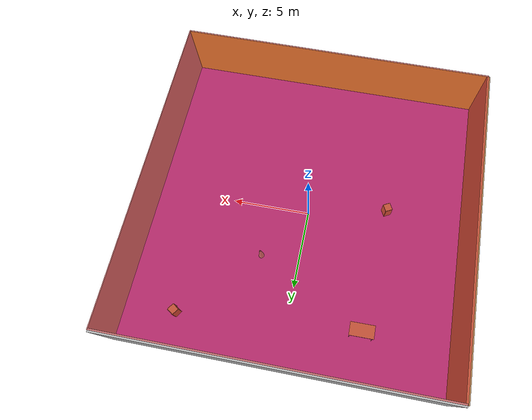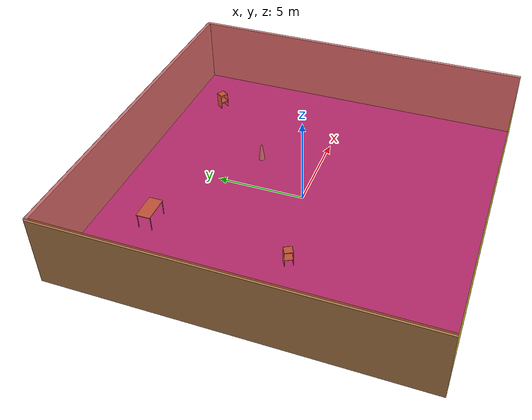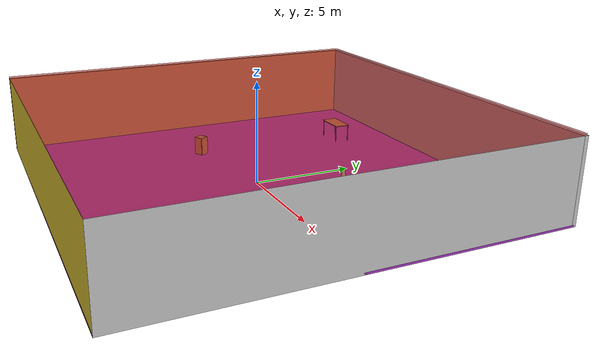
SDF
<sdf version="1.4">
 <world name="default">
  <physics type="ode">
   <max_step_size>0.001</max_step_size>
   <real_time_factor>1</real_time_factor>
   <real_time_update_rate>1000</real_time_update_rate>
   <gravity>0 0 -9.8</gravity>
  </physics>
  <scene><ambient>0.4 0.4 0.4 1</ambient><background>0.7 0.7 0.7 1</background><shadows>1</shadows></scene>
  <model name="Surrounding">
   <static>1</static>
   <link name="Ceiling">
    <collision name="Ceiling_Collision"><geometry><box><size>20 20 0.1</size></box></geometry></collision>
    <visual name="Ceiling_Visual">
     <geometry><box><size>20 20 0.1</size></box></geometry>
     <material>
      <script><uri>file://media/materials/scripts/gazebo.material</uri><name>Gazebo/RedTransparent</name></script>
     </material>
    </visual>
    <pose>0 0 4.05 0 0 0</pose>
   </link>
   <link name="Wall_South">
    <collision name="Wall_South_Collision">
     <geometry><box><size>20 0 4</size></box></geometry>
     <pose>0 0 2 0 -0 0</pose>
    </collision>
    <visual name="Wall_South_Visual">
     <pose>0 0 2 0 -0 0</pose>
     <geometry><box><size>20 0 4</size></box></geometry>
     <material>
      <script><uri>file://media/materials/scripts/gazebo.material</uri><name>Gazebo/ZincYellow</name></script>
     </material>
    </visual>
    <velocity_decay><linear>0</linear><angular>0</angular></velocity_decay>
    <pose>0 -10 0 0 -0 0</pose>
   </link>
   <link name="Wall_East">
    <collision name="Wall_21_Collision">
     <geometry><box><size>20 0 4</size></box></geometry>
     <pose>0 0 2 0 -0 0</pose>
    </collision>
    <visual name="Wall_21_Visual">
     <pose>0 0 2 0 -0 0</pose>
     <geometry><box><size>20 0 4</size></box></geometry>
     <material>
      <script><uri>file://media/materials/scripts/gazebo.material</uri><name>Gazebo/LightOn</name></script>
     </material>
    </visual>
    <velocity_decay><linear>0</linear><angular>0</angular></velocity_decay>
    <pose>10 0 0 0 -0 1.5708</pose>
   </link>
   <link name="Wall_North">
    <collision name="Wall_22_Collision">
     <geometry><box><size>20 0.2 4</size></box></geometry>
     <pose>0 0 2 0 -0 0</pose>
    </collision>
    <visual name="Wall_22_Visual">
     <pose>0 0 2 0 -0 0</pose>
     <geometry><box><size>20 0.2 4</size></box></geometry>
     <material>
      <script><uri>file://media/materials/scripts/gazebo.material</uri><name>Gazebo/PioneerBody</name></script>
     </material>
    </visual>
    <velocity_decay><linear>0</linear><angular>0</angular></velocity_decay>
    <pose>0 10 0 0 -0 0</pose>
   </link>
   <link name="Wall_West">
    <collision name="Wall_23_Collision">
     <geometry><box><size>20 0.2 4</size></box></geometry>
     <pose>0 0 2 0 -0 0</pose>
    </collision>
    <visual name="Wall_23_Visual">
     <pose>0 0 2 0 -0 0</pose>
     <geometry><box><size>20 0.2 4</size></box></geometry>
     <material>
      <script><uri>file://media/materials/scripts/gazebo.material</uri><name>Gazebo/Wood</name></script>
     </material>
    </visual>
    <velocity_decay><linear>0</linear><angular>0</angular></velocity_decay>
    <pose>-10 0 0 0 0 -1.5708</pose>
   </link>
   <link name="Ground_link">
    <collision name="collision">
     <pose>0 0 .05 0 -0 0</pose>
     <geometry><box><size>20 20 0.1</size></box></geometry>
    </collision>
    <visual name="visual">
     <pose>0 0 .05 0 -0 0</pose>
     <geometry><box><size>20 20 0.1</size></box></geometry>
     <material>
      <script><uri>file://media/materials/scripts/gazebo.material</uri><name>Gazebo/PurpleGlow</name></script>
     </material>
    </visual>
   </link>
   <static>1</static>
  </model>
  <spherical_coordinates>
   <surface_model>EARTH_WGS84</surface_model>
   <latitude_deg>0</latitude_deg>
   <longitude_deg>0</longitude_deg>
   <elevation>0</elevation>
   <heading_deg>0</heading_deg>
  </spherical_coordinates>
  <light name="lightball_0" type="diffuse">
   <diffuse>0.8 0.8 0.8 1</diffuse>
   <specular>0.2 0.2 0.2 1</specular>
   <attenuation>
    <range>100</range>
    <constant>0.7</constant>
    <linear>0.01</linear>
    <quadratic>0.001</quadratic>
   </attenuation>
   <direction>-0.5 0.1 -0.9</direction>
   <pose>-4.25877019907 5.12679274235 3.53747717074 0 0 0</pose>
  </light>
  <light name="lightball_1" type="diffuse">
   <diffuse>0.8 0.8 0.8 1</diffuse>
   <specular>0.2 0.2 0.2 1</specular>
   <attenuation>
    <range>100</range>
    <constant>0.7</constant>
    <linear>0.01</linear>
    <quadratic>0.001</quadratic>
   </attenuation>
   <direction>-0.5 0.1 -0.9</direction>
   <pose>4.1624847186 1.86823364938 1.49163280685 0 0 0</pose>
  </light>
  <light name="lightball_2" type="diffuse">
   <diffuse>0.8 0.8 0.8 1</diffuse>
   <specular>0.2 0.2 0.2 1</specular>
   <attenuation>
    <range>100</range>
    <constant>0.7</constant>
    <linear>0.01</linear>
    <quadratic>0.001</quadratic>
   </attenuation>
   <direction>-0.5 0.1 -0.9</direction>
   <pose>3.1844176244 -4.46689910333 0.713650490827 0 0 0</pose>
  </light>
  <light name="lightball_3" type="diffuse">
   <diffuse>0.8 0.8 0.8 1</diffuse>
   <specular>0.2 0.2 0.2 1</specular>
   <attenuation>
    <range>100</range>
    <constant>0.7</constant>
    <linear>0.01</linear>
    <quadratic>0.001</quadratic>
   </attenuation>
   <direction>-0.5 0.1 -0.9</direction>
   <pose>3.57358660893 -1.38926494438 3.04597966116 0 0 0</pose>
  </light>
  <light name="lightball_4" type="diffuse">
   <diffuse>0.8 0.8 0.8 1</diffuse>
   <specular>0.2 0.2 0.2 1</specular>
   <attenuation>
    <range>100</range>
    <constant>0.7</constant>
    <linear>0.01</linear>
    <quadratic>0.001</quadratic>
   </attenuation>
   <direction>-0.5 0.1 -0.9</direction>
   <pose>6.69645526499 -9.05142257054 2.55224527273 0 0 0</pose>
  </light>
  <light name="lightball_5" type="diffuse">
   <diffuse>0.8 0.8 0.8 1</diffuse>
   <specular>0.2 0.2 0.2 1</specular>
   <attenuation>
    <range>100</range>
    <constant>0.7</constant>
    <linear>0.01</linear>
    <quadratic>0.001</quadratic>
   </attenuation>
   <direction>-0.5 0.1 -0.9</direction>
   <pose>-9.72850719697 -8.63402175415 3.04040061341 0 0 0</pose>
  </light>
  <light name="lightball_6" type="diffuse">
   <diffuse>0.8 0.8 0.8 1</diffuse>
   <specular>0.2 0.2 0.2 1</specular>
   <attenuation>
    <range>100</range>
    <constant>0.7</constant>
    <linear>0.01</linear>
    <quadratic>0.001</quadratic>
   </attenuation>
   <direction>-0.5 0.1 -0.9</direction>
   <pose>-3.7341439395 7.57500164638 3.56158988047 0 0 0</pose>
  </light>
  <light name="lightball_7" type="diffuse">
   <diffuse>0.8 0.8 0.8 1</diffuse>
   <specular>0.2 0.2 0.2 1</specular>
   <attenuation>
    <range>100</range>
    <constant>0.7</constant>
    <linear>0.01</linear>
    <quadratic>0.001</quadratic>
   </attenuation>
   <direction>-0.5 0.1 -0.9</direction>
   <pose>-9.00993560656 -2.06227826983 1.77070900287 0 0 0</pose>
  </light>
  <light name="lightball_8" type="diffuse">
   <diffuse>0.8 0.8 0.8 1</diffuse>
   <specular>0.2 0.2 0.2 1</specular>
   <attenuation>
    <range>100</range>
    <constant>0.7</constant>
    <linear>0.01</linear>
    <quadratic>0.001</quadratic>
   </attenuation>
   <direction>-0.5 0.1 -0.9</direction>
   <pose>2.13068481279 -1.01287963112 1.99162375165 0 0 0</pose>
  </light>
  <light name="lightball_9" type="diffuse">
   <diffuse>0.8 0.8 0.8 1</diffuse>
   <specular>0.2 0.2 0.2 1</specular>
   <attenuation>
    <range>100</range>
    <constant>0.7</constant>
    <linear>0.01</linear>
    <quadratic>0.001</quadratic>
   </attenuation>
   <direction>-0.5 0.1 -0.9</direction>
   <pose>9.31994422315 1.12571483085 1.87642492729 0 0 0</pose>
  </light>
  <include><uri>model://cabinet</uri><pose>-5.02213415758 -1.03037282698 0 0 0 0.503849725815</pose></include>
  <include><uri>model://table</uri><pose>-4.51650228727 6.93746315547 0 0 0 0.00730819643347</pose></include>
  <include>
   <uri>model://construction_cone</uri>
   <pose>2.42479723601 3.36950498053 0 0 0 2.54579631439</pose>
  </include>
  <include><uri>model://cabinet</uri><pose>6.76301070384 7.795136545 0 0 0 0.971393850572</pose></include>
 </world>
</sdf>

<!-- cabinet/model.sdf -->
<sdf version="1.5">
  <model name="cabinet">
    <static>true</static>
    <link name="cabinet_bottom_plate">
      <inertial>
        <pose>0 0 -1 0 0 0</pose>
        <inertia>
          <ixx>2.050000</ixx>
          <ixy>0</ixy>
          <ixz>0</ixz>
          <iyy>2.050000</iyy>
          <iyz>0</iyz>
          <izz>2.050000</izz>
        </inertia>
        <mass>25.000000</mass>
      </inertial>
      <collision name="cabinet_bottom_plate_geom">
        <pose>0 0 0.010000 0 0 0</pose>
        <geometry>
          <box>
            <size>0.450000 0.450000 0.020000</size>
          </box>
        </geometry>
      </collision>
      <visual name="cabinet_bottom_plate_geom_visual">
        <pose>0 0 0.010000 0 0 0</pose>
        <geometry>
          <box>
            <size>0.450000 0.450000 0.020000</size>
          </box>
        </geometry>
        <material>
          <script>
            <uri>model://media/materials/scripts/gazebo.material</uri>
            <name>Gazebo/Wood</name>
          </script>
        </material>
      </visual>
      <collision name="cabinet_bottom_plate_geom_cabinet_back_plate">
        <pose>0.235000 0 0.510000 0 0 0</pose>
        <geometry>
          <box>
            <size>0.020000 0.450000 1.020000</size>
          </box>
        </geometry>
      </collision>
      <visual name="cabinet_bottom_plate_geom_cabinet_back_plate_visual">
        <pose>0.235000 0 0.510000 0 0 0</pose>
        <geometry>
          <box>
            <size>0.020000 0.450000 1.020000</size>
          </box>
        </geometry>
        <material>
          <script>
            <uri>model://media/materials/scripts/gazebo.material</uri>
            <name>Gazebo/Wood</name>
          </script>
        </material>
      </visual>
      <collision name="cabinet_bottom_plate_geom_cabinet_left_plate">
        <pose>0 0.235000 0.510000 0 0 0</pose>
        <geometry>
          <box>
            <size>0.450000 0.020000 1.020000</size>
          </box>
        </geometry>
      </collision>
      <visual name="cabinet_bottom_plate_geom_cabinet_left_plate_visual">
        <pose>0 0.235000 0.510000 0 0 0</pose>
        <geometry>
          <box>
            <size>0.450000 0.020000 1.020000</size>
          </box>
        </geometry>
        <material>
          <script>
            <uri>model://media/materials/scripts/gazebo.material</uri>
            <name>Gazebo/Wood</name>
          </script>
        </material>
      </visual>
      <collision name="cabinet_bottom_plate_geom_cabinet_middle_plate">
        <pose>0 0 0.510000 0 0 0</pose>
        <geometry>
          <box>
            <size>0.450000 0.450000 0.020000</size>
          </box>
        </geometry>
      </collision>
      <visual name="cabinet_bottom_plate_geom_cabinet_middle_plate_visual">
        <pose>0 0 0.510000 0 0 0</pose>
        <geometry>
          <box>
            <size>0.450000 0.450000 0.020000</size>
          </box>
        </geometry>
        <material>
          <script>
            <uri>model://media/materials/scripts/gazebo.material</uri>
            <name>Gazebo/Wood</name>
          </script>
        </material>
      </visual>
      <collision name="cabinet_bottom_plate_geom_cabinet_right_plate">
        <pose>0 -0.235000 0.510000 0 0 0</pose>
        <geometry>
          <box>
            <size>0.450000 0.020000 1.020000</size>
          </box>
        </geometry>
      </collision>
      <visual name="cabinet_bottom_plate_geom_cabinet_right_plate_visual">
        <pose>0 -0.235000 0.510000 0 0 0</pose>
        <geometry>
          <box>
            <size>0.450000 0.020000 1.020000</size>
          </box>
        </geometry>
        <material>
          <script>
            <uri>model://media/materials/scripts/gazebo.material</uri>
            <name>Gazebo/Wood</name>
          </script>
        </material>
      </visual>
      <collision name="cabinet_bottom_plate_geom_cabinet_top_plate">
        <pose>0 0 1.010000 0 0 0</pose>
        <geometry>
          <box>
            <size>0.450000 0.450000 0.020000</size>
          </box>
        </geometry>
      </collision>
      <visual name="cabinet_bottom_plate_geom_cabinet_top_plate_visual">
        <pose>0 0 1.010000 0 0 0</pose>
        <geometry>
          <box>
            <size>0.450000 0.450000 0.020000</size>
          </box>
        </geometry>
        <material>
          <script>
            <uri>model://media/materials/scripts/gazebo.material</uri>
            <name>Gazebo/Wood</name>
          </script>
        </material>
      </visual>
    </link>
  </model>
</sdf>

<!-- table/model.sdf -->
<sdf version="1.5">
  <model name="table">
    <static>true</static>
    <link name="link">
      <collision name="surface">
        <pose>0 0 1.0 0 0 0</pose>
        <geometry>
          <box>
            <size>1.5 0.8 0.03</size>
          </box>
        </geometry>
        <surface>
          <friction>
            <ode>
              <mu>0.6</mu>
              <mu2>0.6</mu2>
            </ode>
          </friction>
        </surface>
      </collision>
      <visual name="visual1">
        <pose>0 0 1.0 0 0 0</pose>
        <geometry>
          <box>
            <size>1.5 0.8 0.03</size>
          </box>
        </geometry>
        <material>
          <script>
            <uri>model://media/materials/scripts/gazebo.material</uri>
            <name>Gazebo/Wood</name>
          </script>
        </material>
      </visual>
      <collision name="front_left_leg">
        <pose>0.68 0.38 0.5 0 0 0</pose>
        <geometry>
          <cylinder>
            <radius>0.02</radius>
            <length>1.0</length>
          </cylinder>
        </geometry>
      </collision>
      <visual name="front_left_leg">
        <pose>0.68 0.38 0.5 0 0 0</pose>
        <geometry>
          <cylinder>
            <radius>0.02</radius>
            <length>1.0</length>
          </cylinder>
        </geometry>
        <material>
          <script>
            <uri>model://media/materials/scripts/gazebo.material</uri>
            <name>Gazebo/Grey</name>
          </script>
        </material>
      </visual>
      <collision name="front_right_leg">
        <pose>0.68 -0.38 0.5 0 0 0</pose>
        <geometry>
          <cylinder>
            <radius>0.02</radius>
            <length>1.0</length>
          </cylinder>
        </geometry>
      </collision>
      <visual name="front_right_leg">
        <pose>0.68 -0.38 0.5 0 0 0</pose>
        <geometry>
          <cylinder>
            <radius>0.02</radius>
            <length>1.0</length>
          </cylinder>
        </geometry>
        <material>
          <script>
            <uri>model://media/materials/scripts/gazebo.material</uri>
            <name>Gazebo/Grey</name>
          </script>
        </material>
      </visual>
      <collision name="back_right_leg">
        <pose>-0.68 -0.38 0.5 0 0 0</pose>
        <geometry>
          <cylinder>
            <radius>0.02</radius>
            <length>1.0</length>
          </cylinder>
        </geometry>
      </collision>
      <visual name="back_right_leg">
        <pose>-0.68 -0.38 0.5 0 0 0</pose>
        <geometry>
          <cylinder>
            <radius>0.02</radius>
            <length>1.0</length>
          </cylinder>
        </geometry>
        <material>
          <script>
            <uri>model://media/materials/scripts/gazebo.material</uri>
            <name>Gazebo/Grey</name>
          </script>
        </material>
      </visual>
      <collision name="back_left_leg">
        <pose>-0.68 0.38 0.5 0 0 0</pose>
        <geometry>
          <cylinder>
            <radius>0.02</radius>
            <length>1.0</length>
          </cylinder>
        </geometry>
      </collision>
      <visual name="back_left_leg">
        <pose>-0.68 0.38 0.5 0 0 0</pose>
        <geometry>
          <cylinder>
            <radius>0.02</radius>
            <length>1.0</length>
          </cylinder>
        </geometry>
        <material>
          <script>
            <uri>model://media/materials/scripts/gazebo.material</uri>
            <name>Gazebo/Grey</name>
          </script>
        </material>
      </visual>
    </link>
  </model>
</sdf>

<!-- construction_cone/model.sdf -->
<sdf version="1.5">
  <model name="Construction Cone">
    <link name="link">
      <collision name="collision">
        <geometry>
          <mesh>
            <scale>10 10 10</scale>
            <uri>file://isr-testbed/construction_cone/meshes/construction_cone.dae</uri>
          </mesh>
        </geometry>
      </collision>
      <visual name="visual">
        <geometry>
          <mesh>
            <scale>10 10 10</scale>
            <uri>file://isr-testbed/construction_cone/meshes/construction_cone.dae</uri>
          </mesh>
        </geometry>
      </visual>
    </link>
  </model>
</sdf>
